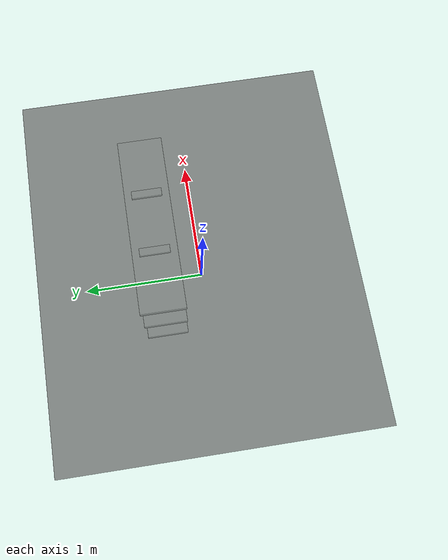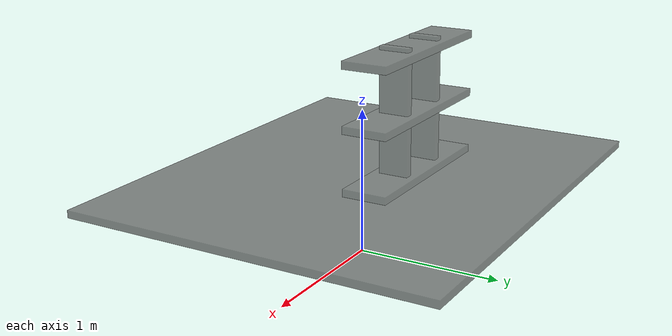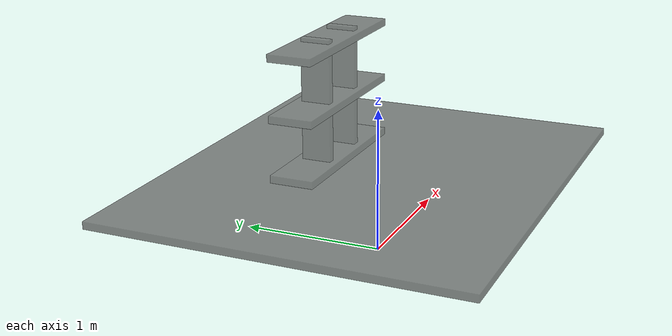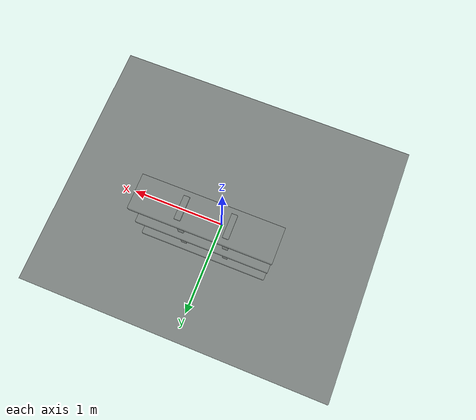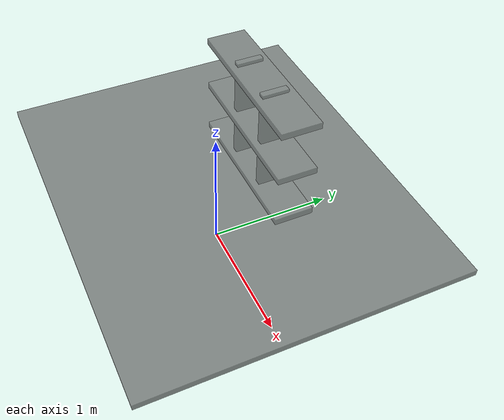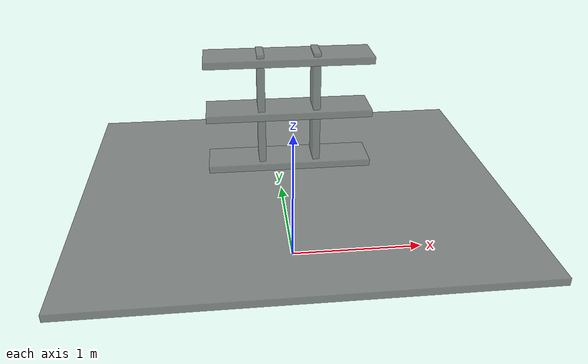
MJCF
<mujoco>
  <compiler angle="radian" />

  <visual>
    <headlight ambient="0.1 0.1 0.1"/>
  </visual>

  <asset>
    <material name="gray" rgba="0.35 0.35 0.35 0.7"/>
  </asset>

  <option gravity="0 0 -9.8" />
  <worldbody>
    <body name="table" pos="0 0.05 0.55" quat="1 0 0 0">
      <joint type="free" />
      <geom type="box" size="1.5 1.25 0.025" material="gray"/>

      <body name="shelf_base" pos="0.0 0.3 0.1" quat="1 0 0 0">
        <inertial pos="0 0 0" mass="1" diaginertia="0.01 0.01 0.01"/>
        <geom type="box" size="0.6 0.15 0.025" material="gray"/>

        <body name="divider" pos="0.2 0.0 0.4" quat="1 0 0 0">
          <inertial pos="0 0 0" mass="1" diaginertia="0.01 0.01 0.01"/>
          <geom type="box" size="0.025 0.1 0.45" material="gray"/>
        </body>
        <body name="divider2" pos="-0.2 0.0 0.4" quat="1 0 0 0">
          <inertial pos="0 0 0" mass="1" diaginertia="0.01 0.01 0.01"/>
          <geom type="box" size="0.025 0.1 0.45" material="gray"/>
        </body>
        <body name="level1" pos="0.0 0.0 0.4" quat="1 0 0 0">
          <inertial pos="0 0 0" mass="1" diaginertia="0.01 0.01 0.01"/>
          <geom type="box" size="0.6 0.15 0.025" material="gray"/>
        </body>
        <body name="level2" pos="0.0 0.0 0.8" quat="1 0 0 0">
          <inertial pos="0 0 0" mass="1" diaginertia="0.01 0.01 0.01"/>
          <geom type="box" size="0.6 0.15 0.025" material="gray"/>
        </body>
      </body>
    </body>

  </worldbody>
</mujoco>
